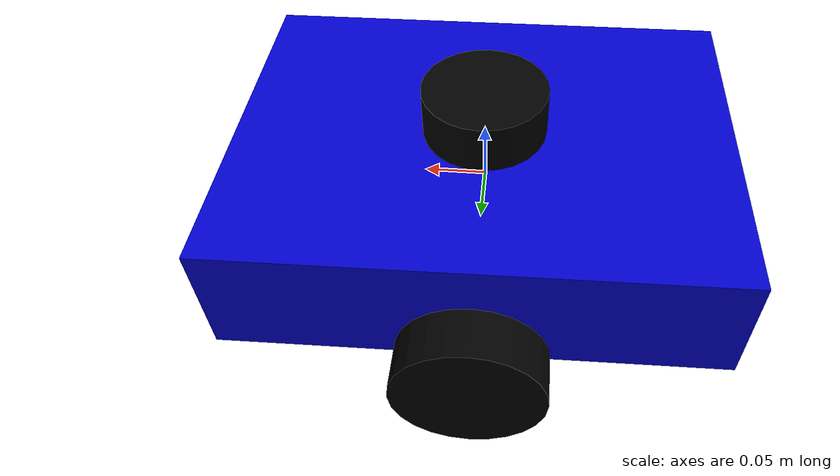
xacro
<?xml version="1.0"?>
<robot name="simple_robot" xmlns:xacro="http://www.ros.org/wiki/xacro">

  <!-- ==================== 全局参数 ==================== -->
  <!-- 底盘 -->
  <xacro:property name="base_length" value="0.4"/>
  <xacro:property name="base_width"  value="0.3"/>
  <xacro:property name="base_height" value="0.1"/>

  <!-- 驱动轮 -->
  <xacro:property name="wheel_radius" value="0.06"/>
  <xacro:property name="wheel_length" value="0.04"/>
  <xacro:property name="wheel_separation" value="0.34"/>
  <xacro:property name="wheel_z_offset" value="-0.05"/>

  <!-- 万向轮 -->
  <xacro:property name="caster_radius" value="0.03"/>

  <!-- 激光雷达 -->
  <xacro:property name="lidar_radius" value="0.05"/>
  <xacro:property name="lidar_height" value="0.04"/>

  <!-- ==================== 底盘 ==================== -->
  <link name="base_link">
    <visual>
      <geometry>
        <box size="${base_length} ${base_width} ${base_height}"/>
      </geometry>
      <material name="blue">
        <color rgba="0.0 0.0 0.8 1.0"/>
      </material>
    </visual>
    <collision>
      <geometry>
        <box size="${base_length} ${base_width} ${base_height}"/>
      </geometry>
    </collision>
    <inertial>
      <mass value="5.0"/>
      <inertia ixx="0.1" ixy="0.0" ixz="0.0"
               iyy="0.1" iyz="0.0" izz="0.1"/>
    </inertial>
  </link>

  <!-- ==================== 驱动轮宏 ==================== -->
  <!-- 参数：name=左/右名称前缀，y_pos=Y轴位置（正为左，负为右） -->
  <xacro:macro name="drive_wheel" params="name y_pos">

    <link name="${name}_link">
      <visual>
        <geometry>
          <cylinder radius="${wheel_radius}" length="${wheel_length}"/>
        </geometry>
        <material name="black">
          <color rgba="0.0 0.0 0.0 1.0"/>
        </material>
      </visual>
      <collision>
        <geometry>
          <cylinder radius="${wheel_radius}" length="${wheel_length}"/>
        </geometry>
      </collision>
      <inertial>
        <mass value="0.5"/>
        <inertia ixx="0.01" ixy="0.0" ixz="0.0"
                 iyy="0.01" iyz="0.0" izz="0.01"/>
      </inertial>
    </link>

    <joint name="${name}_joint" type="revolute">
      <parent link="base_link"/>
      <child link="${name}_link"/>
      <origin xyz="0.0 ${y_pos} ${wheel_z_offset}" rpy="1.5708 0.0 0.0"/>
      <axis xyz="0 0 1"/>
      <limit lower="-1e9" upper="1e9" effort="10.0" velocity="10.0"/>
    </joint>

    <!-- 驱动轮摩擦力 -->
    <gazebo reference="${name}_link">
      <mu1>1.0</mu1>
      <mu2>1.0</mu2>
    </gazebo>

  </xacro:macro>

  <!-- 调用轮子宏：左轮和右轮 -->
  <xacro:drive_wheel name="wheel_left"  y_pos="${ wheel_separation / 2}"/>
  <xacro:drive_wheel name="wheel_right" y_pos="${-wheel_separation / 2}"/>

  <!-- ==================== 万向轮 ==================== -->
  <link name="caster_link">
    <visual>
      <geometry>
        <sphere radius="${caster_radius}"/>
      </geometry>
      <material name="gray">
        <color rgba="0.5 0.5 0.5 1.0"/>
      </material>
    </visual>
    <collision>
      <geometry>
        <sphere radius="${caster_radius}"/>
      </geometry>
    </collision>
    <inertial>
      <mass value="0.1"/>
      <inertia ixx="0.001" ixy="0.0" ixz="0.0"
               iyy="0.001" iyz="0.0" izz="0.001"/>
    </inertial>
  </link>

  <joint name="caster_joint" type="fixed">
    <parent link="base_link"/>
    <child link="caster_link"/>
    <origin xyz="${-base_length/2 + caster_radius} 0.0 ${-base_height/2 - caster_radius}" rpy="0.0 0.0 0.0"/>
  </joint>

  <gazebo reference="caster_link">
    <mu1>0.0</mu1>
    <mu2>0.0</mu2>
  </gazebo>

  <!-- ==================== 激光雷达宏 ==================== -->
  <xacro:macro name="lidar_sensor" params="name parent_link x_pos y_pos z_pos">

    <link name="${name}_link">
      <visual>
        <geometry>
          <cylinder radius="${lidar_radius}" length="${lidar_height}"/>
        </geometry>
        <material name="black">
          <color rgba="0.0 0.0 0.0 1.0"/>
        </material>
      </visual>
      <collision>
        <geometry>
          <cylinder radius="${lidar_radius}" length="${lidar_height}"/>
        </geometry>
      </collision>
      <inertial>
        <mass value="0.1"/>
        <inertia ixx="0.001" ixy="0.0" ixz="0.0"
                 iyy="0.001" iyz="0.0" izz="0.001"/>
      </inertial>
    </link>

    <joint name="${name}_joint" type="fixed">
      <parent link="${parent_link}"/>
      <child link="${name}_link"/>
      <origin xyz="${x_pos} ${y_pos} ${z_pos}" rpy="0.0 0.0 0.0"/>
    </joint>

  </xacro:macro>

  <!-- 调用激光雷达宏：固定在底盘顶部中央 -->
  <xacro:lidar_sensor name="lidar"
                      parent_link="base_link"
                      x_pos="0.0"
                      y_pos="0.0"
                      z_pos="${base_height/2 + lidar_height/2}"/>

  <!-- ==================== 差速驱动插件 ==================== -->
  <gazebo>
    <plugin name="differential_drive_controller"
            filename="libgazebo_ros_diff_drive.so">
      <leftJoint>wheel_left_joint</leftJoint>
      <rightJoint>wheel_right_joint</rightJoint>
      <wheelSeparation>${wheel_separation}</wheelSeparation>
      <wheelDiameter>${wheel_radius * 2}</wheelDiameter>
      <maxWheelTorque>20</maxWheelTorque>
      <maxWheelAcceleration>1.0</maxWheelAcceleration>
      <commandTopic>/cmd_vel</commandTopic>
      <odometryTopic>/odom</odometryTopic>
      <odometryFrame>odom</odometryFrame>
      <robotBaseFrame>base_link</robotBaseFrame>
      <publishWheelTF>false</publishWheelTF>
      <publishOdomTF>true</publishOdomTF>
      <publishWheelJointState>true</publishWheelJointState>
    </plugin>
  </gazebo>

</robot>
